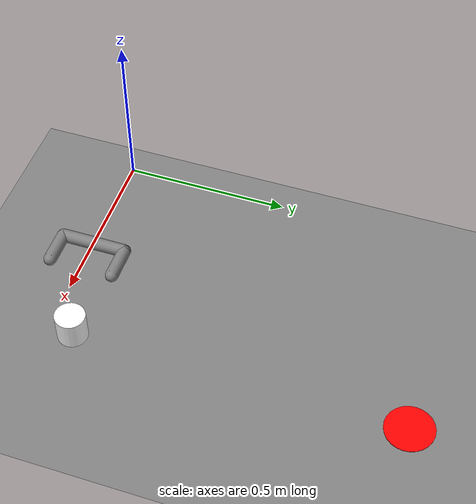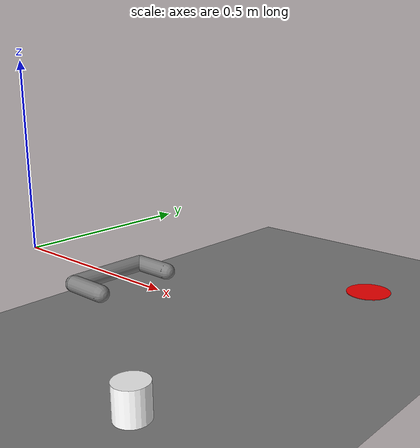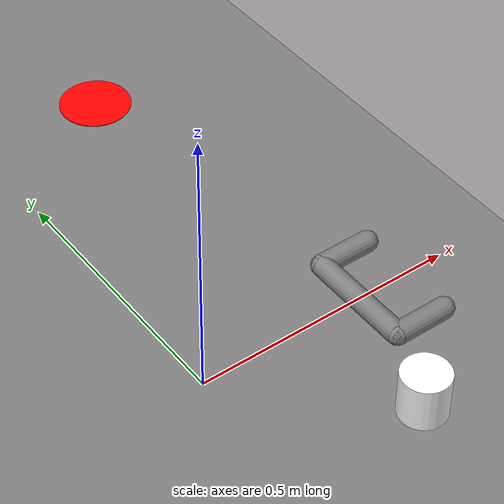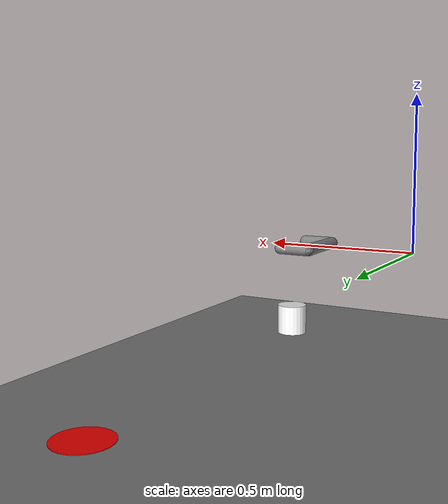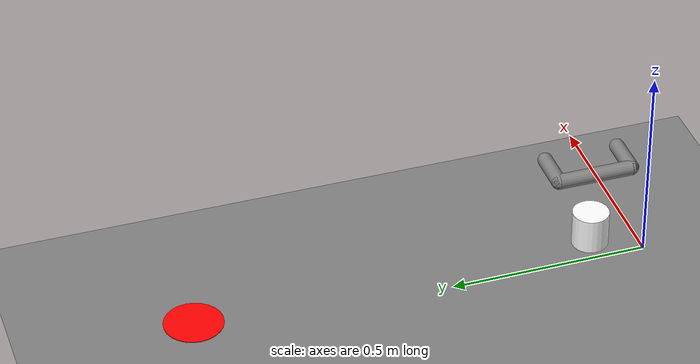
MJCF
<mujoco model="arm3d">
  <compiler inertiafromgeom="true" angle="radian" coordinate="local"/>
  <option timestep="0.01" gravity="0 0 0" iterations="20" integrator="Euler" />

  <default>
    <joint armature='0.04' damping="1" limited="true"/>
    <geom friction=".8 .1 .1" density="300" margin="0.002" condim="1" contype="0" conaffinity="0"/>
  </default>

  <worldbody>
    <light diffuse=".5 .5 .5" pos="0 0 3" dir="0 0 -1"/>
    <geom name="table" type="plane" pos="0 0.5 -0.325" size="1 5 0.1" contype="1" conaffinity="1"/>

    <body name="r_wrist_flex_link" pos="0.321 0 0">
      <geom name="wf" type="capsule" fromto="0 -0.02 0 0 0.02 0" size="0.01" />
      <joint name="r_wrist_flex_joint" type="hinge" pos="0 0 0" axis="0 1 0" range="-1.094 0" damping=".1" />

      <body name="r_wrist_roll_link" pos="0 0 0">
        <joint name="r_wrist_roll_joint" type="hinge" pos="0 0 0" limited="true" axis="1 0 0" damping="0.1" range="-1.5 1.5"/>
        <body name="tips_arm" pos="0 0 0">
          <geom name="tip_arml" type="sphere" pos="0.1 -0.1 0." size="0.01" />
          <geom name="tip_armr" type="sphere" pos="0.1 0.1 0." size="0.01" />
        </body>
        <geom type="capsule" fromto="0 -0.1 0. 0.0 +0.1 0" size="0.02" contype="1" conaffinity="1" />
        <geom type="capsule" fromto="0 -0.1 0. 0.1 -0.1 0" size="0.02" contype="1" conaffinity="1" />
        <geom type="capsule" fromto="0 +0.1 0. 0.1 +0.1 0." size="0.02" contype="1" conaffinity="1" />
      </body>
    </body>

    <body name="object" pos="0.45 -0.05 -0.275" >
      <geom rgba="1 1 1 0" type="sphere" size="0.05 0.05 0.05" density="0.00001" conaffinity="0"/>
      <geom rgba="1 1 1 1" type="cylinder" size="0.05 0.05 0.05" density="0.00001" contype="1" conaffinity="0"/>
      <joint name="obj_slidey" type="slide" pos="0 0 0" axis="0 1 0" range="-10.3213 10.3" damping="0.5"/>
      <joint name="obj_slidex" type="slide" pos="0 0 0" axis="1 0 0" range="-10.3213 10.3" damping="0.5"/>
    </body>

    <body name="goal" pos="0.45 1.05 -0.3230">
      <geom rgba="1 0 0 1" type="cylinder" size="0.08 0.001 0.1" density='0.00001' contype="0" conaffinity="0"/>
      <joint name="goal_slidey" type="slide" pos="0 0 0" axis="0 1 0" range="-10.3213 10.3" damping="0.5"/>
      <joint name="goal_slidex" type="slide" pos="0 0 0" axis="1 0 0" range="-10.3213 10.3" damping="0.5"/>
    </body>
  </worldbody>

  <actuator>
    <motor joint="r_wrist_flex_joint" ctrlrange="-2.0 2.0" ctrllimited="true" />
    <motor joint="r_wrist_roll_joint" ctrlrange="-2.0 2.0" ctrllimited="true"/>
  </actuator>
</mujoco>
